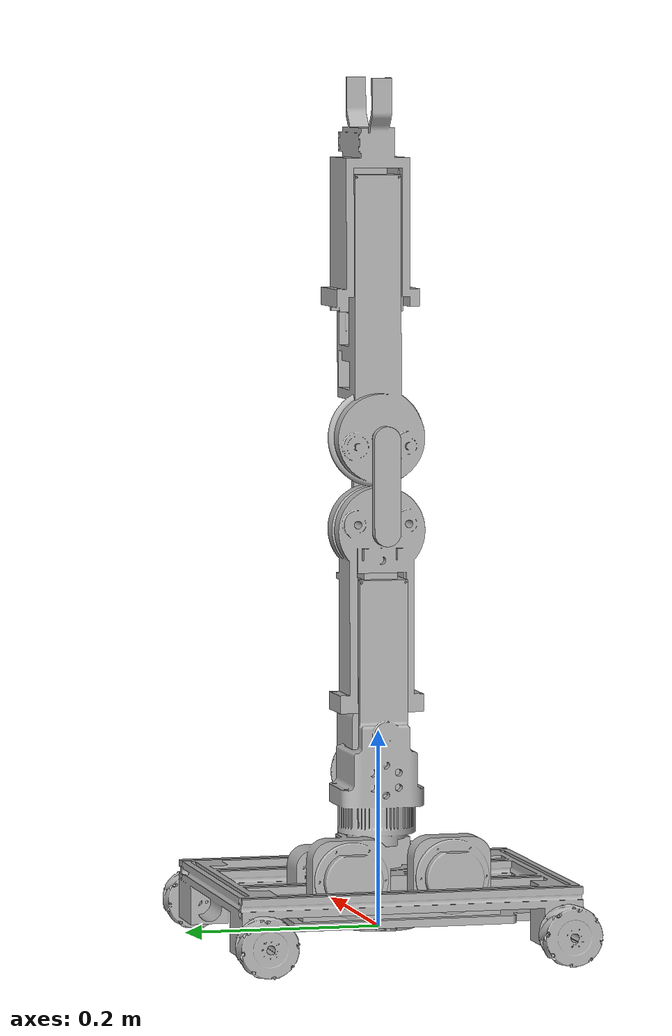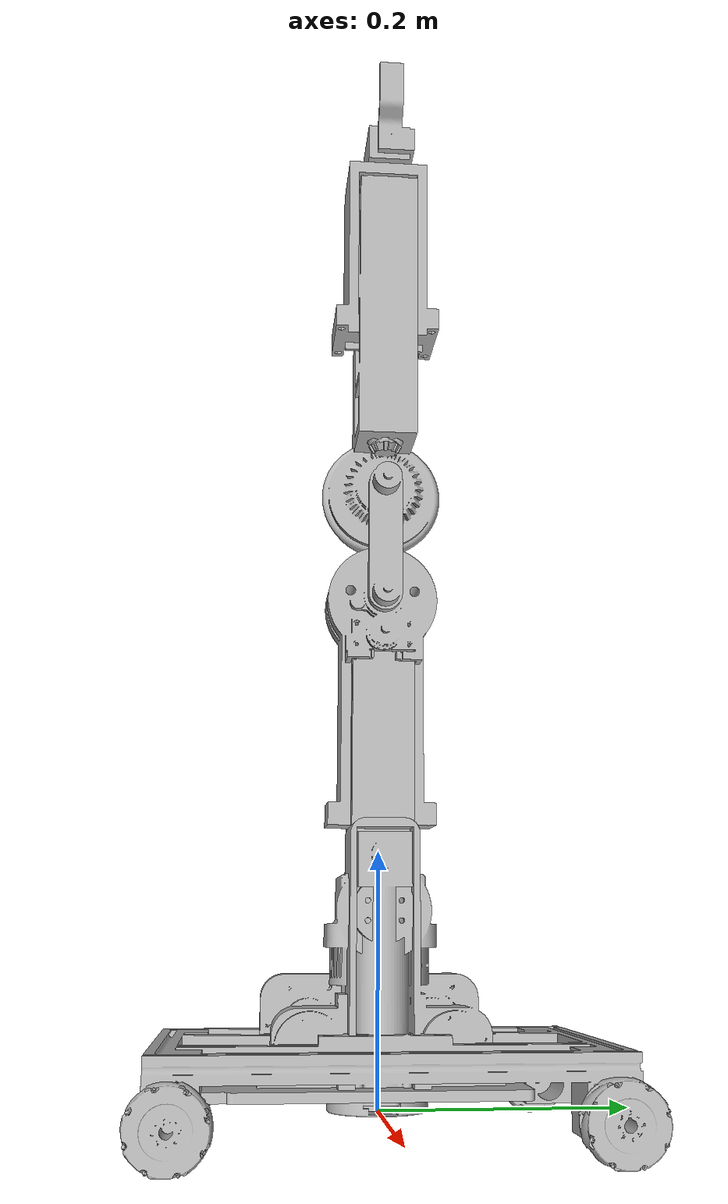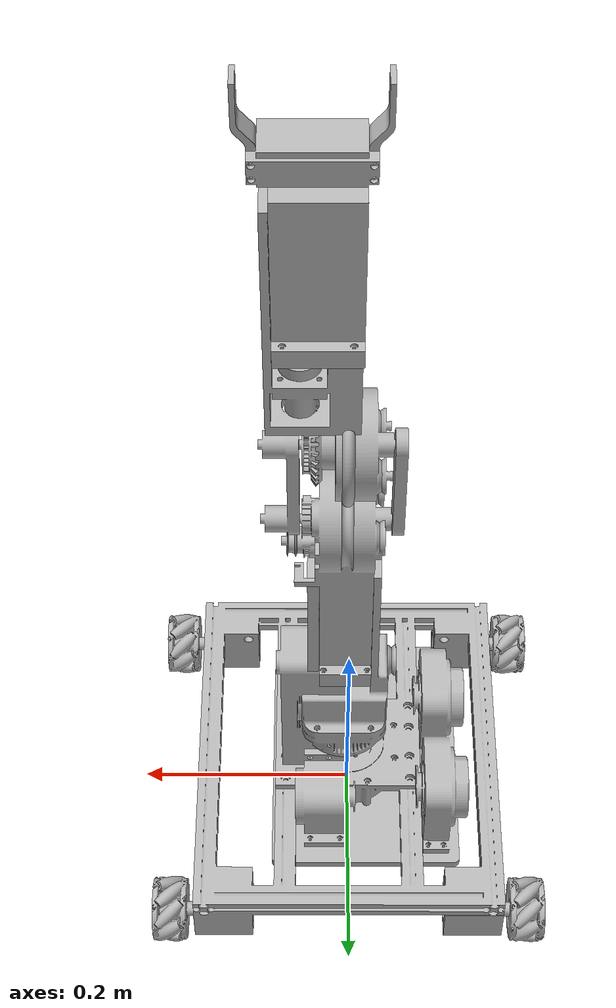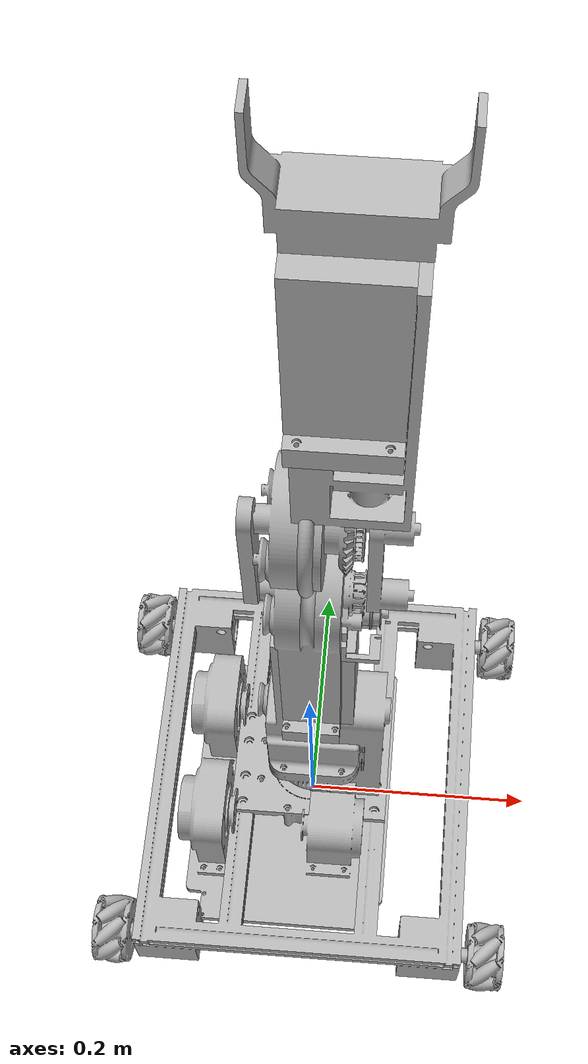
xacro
<?xml version="1.0" ?>
<robot name="manipulator_motor" xmlns:xacro="http://www.ros.org/wiki/xacro">

<xacro:include filename="$(find manipulator_motor_description)/urdf/materials.xacro" />
<xacro:include filename="$(find manipulator_motor_description)/urdf/manipulator_motor.trans" />
<xacro:include filename="$(find manipulator_motor_description)/urdf/manipulator_motor.gazebo" />
<link name="base_link">
  <inertial>
    <origin xyz="7.545697705159546e-06 -6.288383922219511e-06 0.03594594111046938" rpy="0 0 0"/>
    <mass value="0.8918760892092862"/>
    <inertia ixx="0.013044" iyy="0.008436" izz="0.020962" ixy="0.0" iyz="-1e-06" ixz="0.0"/>
  </inertial>
  <visual>
    <origin xyz="0 0 0" rpy="0 0 0"/>
    <geometry>
      <mesh filename="package://manipulator_motor_description/meshes/base_link.stl" scale="0.001 0.001 0.001"/>
    </geometry>
    <material name="silver"/>
  </visual>
  <collision>
    <origin xyz="0 0 0" rpy="0 0 0"/>
    <geometry>
      <mesh filename="package://manipulator_motor_description/meshes/base_link.stl" scale="0.001 0.001 0.001"/>
    </geometry>
  </collision>
</link>

<link name="yaw_link_1">
  <inertial>
    <origin xyz="0.02505185068167164 0.00017308161549442616 0.04350757657338304" rpy="0 0 0"/>
    <mass value="0.9994851144783486"/>
    <inertia ixx="0.005871" iyy="0.004947" izz="0.008392" ixy="-9e-06" iyz="-5e-06" ixz="-0.000648"/>
  </inertial>
  <visual>
    <origin xyz="-0.0 -0.0 -0.0566" rpy="0 0 0"/>
    <geometry>
      <mesh filename="package://manipulator_motor_description/meshes/yaw_link_1.stl" scale="0.001 0.001 0.001"/>
    </geometry>
    <material name="silver"/>
  </visual>
  <collision>
    <origin xyz="-0.0 -0.0 -0.0566" rpy="0 0 0"/>
    <geometry>
      <mesh filename="package://manipulator_motor_description/meshes/yaw_link_1.stl" scale="0.001 0.001 0.001"/>
    </geometry>
  </collision>
</link>

<link name="lower_link1_1">
  <inertial>
    <origin xyz="-0.045625724622633944 3.860031882735413e-05 0.05414663144303672" rpy="0 0 0"/>
    <mass value="0.42602249031214784"/>
    <inertia ixx="0.002224" iyy="0.002372" izz="0.000454" ixy="-0.0" iyz="-1e-06" ixz="-7e-06"/>
  </inertial>
  <visual>
    <origin xyz="-0.054 -0.0005 -0.1531" rpy="0 0 0"/>
    <geometry>
      <mesh filename="package://manipulator_motor_description/meshes/lower_link1_1.stl" scale="0.001 0.001 0.001"/>
    </geometry>
    <material name="silver"/>
  </visual>
  <collision>
    <origin xyz="-0.054 -0.0005 -0.1531" rpy="0 0 0"/>
    <geometry>
      <mesh filename="package://manipulator_motor_description/meshes/lower_link1_1.stl" scale="0.001 0.001 0.001"/>
    </geometry>
  </collision>
</link>

<link name="lower_link2_1">
  <inertial>
    <origin xyz="-0.00012108099532818183 4.2996702874214024e-05 0.16604608820037914" rpy="0 0 0"/>
    <mass value="0.48373366369507653"/>
    <inertia ixx="0.002598" iyy="0.002446" izz="0.000395" ixy="1e-06" iyz="-1e-06" ixz="-3e-06"/>
  </inertial>
  <visual>
    <origin xyz="-0.0058 -0.000557 -0.1931" rpy="0 0 0"/>
    <geometry>
      <mesh filename="package://manipulator_motor_description/meshes/lower_link2_1.stl" scale="0.001 0.001 0.001"/>
    </geometry>
    <material name="silver"/>
  </visual>
  <collision>
    <origin xyz="-0.0058 -0.000557 -0.1931" rpy="0 0 0"/>
    <geometry>
      <mesh filename="package://manipulator_motor_description/meshes/lower_link2_1.stl" scale="0.001 0.001 0.001"/>
    </geometry>
  </collision>
</link>

<link name="guide2_1">
  <inertial>
    <origin xyz="0.004660145389821631 -8.351629404252335e-05 0.051805846663189714" rpy="0 0 0"/>
    <mass value="0.04577799695273184"/>
    <inertia ixx="6.9e-05" iyy="7e-05" izz="5e-06" ixy="-0.0" iyz="-0.0" ixz="0.0"/>
  </inertial>
  <visual>
    <origin xyz="-0.0493 -0.000854 -0.399044" rpy="0 0 0"/>
    <geometry>
      <mesh filename="package://manipulator_motor_description/meshes/guide2_1.stl" scale="0.001 0.001 0.001"/>
    </geometry>
    <material name="silver"/>
  </visual>
  <collision>
    <origin xyz="-0.0493 -0.000854 -0.399044" rpy="0 0 0"/>
    <geometry>
      <mesh filename="package://manipulator_motor_description/meshes/guide2_1.stl" scale="0.001 0.001 0.001"/>
    </geometry>
  </collision>
</link>

<link name="upper_link1_1">
  <inertial>
    <origin xyz="-0.030636725348820667 -0.00013414945634581928 0.09528109292485926" rpy="0 0 0"/>
    <mass value="0.7296264074388947"/>
    <inertia ixx="0.00632" iyy="0.006514" izz="0.000624" ixy="-1e-06" iyz="-1.4e-05" ixz="-0.000515"/>
  </inertial>
  <visual>
    <origin xyz="-0.04675 -0.001214 -0.492543" rpy="0 0 0"/>
    <geometry>
      <mesh filename="package://manipulator_motor_description/meshes/upper_link1_1.stl" scale="0.001 0.001 0.001"/>
    </geometry>
    <material name="silver"/>
  </visual>
  <collision>
    <origin xyz="-0.04675 -0.001214 -0.492543" rpy="0 0 0"/>
    <geometry>
      <mesh filename="package://manipulator_motor_description/meshes/upper_link1_1.stl" scale="0.001 0.001 0.001"/>
    </geometry>
  </collision>
</link>

<link name="guide1_1">
  <inertial>
    <origin xyz="-0.005041755897903143 0.00010117652591923917 0.04674982669055905" rpy="0 0 0"/>
    <mass value="0.030529146035298826"/>
    <inertia ixx="3.5e-05" iyy="3.3e-05" izz="2e-06" ixy="-0.0" iyz="-0.0" ixz="-0.0"/>
  </inertial>
  <visual>
    <origin xyz="0.03315 -0.000679 -0.4041" rpy="0 0 0"/>
    <geometry>
      <mesh filename="package://manipulator_motor_description/meshes/guide1_1.stl" scale="0.001 0.001 0.001"/>
    </geometry>
    <material name="silver"/>
  </visual>
  <collision>
    <origin xyz="0.03315 -0.000679 -0.4041" rpy="0 0 0"/>
    <geometry>
      <mesh filename="package://manipulator_motor_description/meshes/guide1_1.stl" scale="0.001 0.001 0.001"/>
    </geometry>
  </collision>
</link>

<link name="upper_link2_1">
  <inertial>
    <origin xyz="-0.012947590284332407 5.5232631865337074e-05 0.13361930444452141" rpy="0 0 0"/>
    <mass value="0.35479896787269694"/>
    <inertia ixx="0.001653" iyy="0.001635" izz="0.000368" ixy="-0.0" iyz="-1.1e-05" ixz="2.8e-05"/>
  </inertial>
  <visual>
    <origin xyz="-0.0442 -0.001705 -0.594659" rpy="0 0 0"/>
    <geometry>
      <mesh filename="package://manipulator_motor_description/meshes/upper_link2_1.stl" scale="0.001 0.001 0.001"/>
    </geometry>
    <material name="silver"/>
  </visual>
  <collision>
    <origin xyz="-0.0442 -0.001705 -0.594659" rpy="0 0 0"/>
    <geometry>
      <mesh filename="package://manipulator_motor_description/meshes/upper_link2_1.stl" scale="0.001 0.001 0.001"/>
    </geometry>
  </collision>
</link>

<link name="wheel_fl_1">
  <inertial>
    <origin xyz="0.022733132020722774 5.291380714977922e-07 -7.023490456061279e-06" rpy="0 0 0"/>
    <mass value="0.05353335397371693"/>
    <inertia ixx="2.5e-05" iyy="1.8e-05" izz="1.8e-05" ixy="-0.0" iyz="-0.0" ixz="0.0"/>
  </inertial>
  <visual>
    <origin xyz="-0.1452 0.1552 -0.0091" rpy="0 0 0"/>
    <geometry>
      <mesh filename="package://manipulator_motor_description/meshes/wheel_fl_1.stl" scale="0.001 0.001 0.001"/>
    </geometry>
    <material name="silver"/>
  </visual>
  <collision>
    <origin xyz="-0.1452 0.1552 -0.0091" rpy="0 0 0"/>
    <geometry>
      <mesh filename="package://manipulator_motor_description/meshes/wheel_fl_1.stl" scale="0.001 0.001 0.001"/>
    </geometry>
  </collision>
</link>

<link name="wheel_bl_1">
  <inertial>
    <origin xyz="0.02273313202167407 5.110640206307249e-07 -7.024835080346459e-06" rpy="0 0 0"/>
    <mass value="0.05353335397547339"/>
    <inertia ixx="2.5e-05" iyy="1.8e-05" izz="1.8e-05" ixy="-0.0" iyz="-0.0" ixz="0.0"/>
  </inertial>
  <visual>
    <origin xyz="-0.1452 -0.1552 -0.0091" rpy="0 0 0"/>
    <geometry>
      <mesh filename="package://manipulator_motor_description/meshes/wheel_bl_1.stl" scale="0.001 0.001 0.001"/>
    </geometry>
    <material name="silver"/>
  </visual>
  <collision>
    <origin xyz="-0.1452 -0.1552 -0.0091" rpy="0 0 0"/>
    <geometry>
      <mesh filename="package://manipulator_motor_description/meshes/wheel_bl_1.stl" scale="0.001 0.001 0.001"/>
    </geometry>
  </collision>
</link>

<link name="wheel_fr_1">
  <inertial>
    <origin xyz="-0.022733132410434842 2.849096295387543e-06 6.441422285792531e-06" rpy="0 0 0"/>
    <mass value="0.05353335889121502"/>
    <inertia ixx="2.5e-05" iyy="1.8e-05" izz="1.8e-05" ixy="0.0" iyz="0.0" ixz="0.0"/>
  </inertial>
  <visual>
    <origin xyz="0.1452 0.1552 -0.0091" rpy="0 0 0"/>
    <geometry>
      <mesh filename="package://manipulator_motor_description/meshes/wheel_fr_1.stl" scale="0.001 0.001 0.001"/>
    </geometry>
    <material name="silver"/>
  </visual>
  <collision>
    <origin xyz="0.1452 0.1552 -0.0091" rpy="0 0 0"/>
    <geometry>
      <mesh filename="package://manipulator_motor_description/meshes/wheel_fr_1.stl" scale="0.001 0.001 0.001"/>
    </geometry>
  </collision>
</link>

<link name="wheel_br_1">
  <inertial>
    <origin xyz="-0.022733131995852668 4.4508618859961935e-06 5.458912178934669e-06" rpy="0 0 0"/>
    <mass value="0.05353335383710403"/>
    <inertia ixx="2.5e-05" iyy="1.8e-05" izz="1.8e-05" ixy="0.0" iyz="0.0" ixz="0.0"/>
  </inertial>
  <visual>
    <origin xyz="0.1452 -0.1552 -0.0091" rpy="0 0 0"/>
    <geometry>
      <mesh filename="package://manipulator_motor_description/meshes/wheel_br_1.stl" scale="0.001 0.001 0.001"/>
    </geometry>
    <material name="silver"/>
  </visual>
  <collision>
    <origin xyz="0.1452 -0.1552 -0.0091" rpy="0 0 0"/>
    <geometry>
      <mesh filename="package://manipulator_motor_description/meshes/wheel_br_1.stl" scale="0.001 0.001 0.001"/>
    </geometry>
  </collision>
</link>

<joint name="È¸Àü 1" type="revolute">
  <origin xyz="0.0 0.0 0.0566" rpy="0 0 0"/>
  <parent link="base_link"/>
  <child link="yaw_link_1"/>
  <axis xyz="-0.0 -0.0 -1.0"/>
  <limit upper="2.094395" lower="-2.094395" effort="100" velocity="100"/>
</joint>

<joint name="È¸Àü 2" type="revolute">
  <origin xyz="0.054 0.0005 0.0965" rpy="0 0 0"/>
  <parent link="yaw_link_1"/>
  <child link="lower_link1_1"/>
  <axis xyz="1.0 -0.0 0.0"/>
  <limit upper="1.570796" lower="0.0" effort="100" velocity="100"/>
</joint>

<joint name="½½¶óÀÌ´õ 3" type="prismatic">
  <origin xyz="-0.0482 5.7e-05 0.04" rpy="0 0 0"/>
  <parent link="lower_link1_1"/>
  <child link="lower_link2_1"/>
  <axis xyz="0.0 0.000713 1.0"/>
  <limit upper="0.09" lower="0.0" effort="100" velocity="100"/>
</joint>

<joint name="È¸Àü 4" type="revolute">
  <origin xyz="0.0435 0.000297 0.205944" rpy="0 0 0"/>
  <parent link="lower_link2_1"/>
  <child link="guide2_1"/>
  <axis xyz="1.0 -0.0 0.0"/>
  <limit upper="1.570796" lower="0.0" effort="100" velocity="100"/>
</joint>

<joint name="È¸Àü 5" type="revolute">
  <origin xyz="-0.00255 0.00036 0.093499" rpy="0 0 0"/>
  <parent link="guide2_1"/>
  <child link="upper_link1_1"/>
  <axis xyz="1.0 0.0 -0.0"/>
  <limit upper="1.570796" lower="0.0" effort="100" velocity="100"/>
</joint>

<joint name="È¸Àü 6" type="continuous">
  <origin xyz="-0.03895 0.000122 0.211" rpy="0 0 0"/>
  <parent link="lower_link2_1"/>
  <child link="guide1_1"/>
  <axis xyz="-1.0 0.0 -0.0"/>
</joint>

<joint name="½½¶óÀÌ´õ 7" type="prismatic">
  <origin xyz="-0.00255 0.000491 0.102116" rpy="0 0 0"/>
  <parent link="upper_link1_1"/>
  <child link="upper_link2_1"/>
  <axis xyz="0.0 0.002413 0.999997"/>
  <limit upper="0.09" lower="0.0" effort="100" velocity="100"/>
</joint>

<joint name="È¸Àü 8" type="continuous">
  <origin xyz="0.1452 -0.1552 0.0091" rpy="0 0 0"/>
  <parent link="base_link"/>
  <child link="wheel_fl_1"/>
  <axis xyz="-1.0 0.0 -0.0"/>
</joint>

<joint name="È¸Àü 9" type="continuous">
  <origin xyz="0.1452 0.1552 0.0091" rpy="0 0 0"/>
  <parent link="base_link"/>
  <child link="wheel_bl_1"/>
  <axis xyz="-1.0 0.0 -0.0"/>
</joint>

<joint name="È¸Àü 10" type="continuous">
  <origin xyz="-0.1452 -0.1552 0.0091" rpy="0 0 0"/>
  <parent link="base_link"/>
  <child link="wheel_fr_1"/>
  <axis xyz="1.0 -0.0 0.0"/>
</joint>

<joint name="È¸Àü 11" type="continuous">
  <origin xyz="-0.1452 0.1552 0.0091" rpy="0 0 0"/>
  <parent link="base_link"/>
  <child link="wheel_br_1"/>
  <axis xyz="1.0 -0.0 0.0"/>
</joint>

</robot>

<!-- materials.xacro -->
<robot name="manipulator_motor" xmlns:xacro="http://www.ros.org/wiki/xacro" >

<material name="silver">
  <color rgba="0.700 0.700 0.700 1.000"/>
</material>

</robot>

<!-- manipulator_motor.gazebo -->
<robot name="manipulator_motor" xmlns:xacro="http://www.ros.org/wiki/xacro" >

<xacro:property name="body_color" value="Gazebo/Silver" />

<gazebo>
  <plugin name="control" filename="libgazebo_ros_control.so"/>
</gazebo>
<gazebo reference="base_link">
  <material>${body_color}</material>
  <mu1>0.2</mu1>
  <mu2>0.2</mu2>
  <selfCollide>true</selfCollide>
  <gravity>true</gravity>
</gazebo>

<gazebo reference="yaw_link_1">
  <material>${body_color}</material>
  <mu1>0.2</mu1>
  <mu2>0.2</mu2>
  <selfCollide>true</selfCollide>
</gazebo>

<gazebo reference="lower_link1_1">
  <material>${body_color}</material>
  <mu1>0.2</mu1>
  <mu2>0.2</mu2>
  <selfCollide>true</selfCollide>
</gazebo>

<gazebo reference="lower_link2_1">
  <material>${body_color}</material>
  <mu1>0.2</mu1>
  <mu2>0.2</mu2>
  <selfCollide>true</selfCollide>
</gazebo>

<gazebo reference="guide2_1">
  <material>${body_color}</material>
  <mu1>0.2</mu1>
  <mu2>0.2</mu2>
  <selfCollide>true</selfCollide>
</gazebo>

<gazebo reference="upper_link1_1">
  <material>${body_color}</material>
  <mu1>0.2</mu1>
  <mu2>0.2</mu2>
  <selfCollide>true</selfCollide>
</gazebo>

<gazebo reference="guide1_1">
  <material>${body_color}</material>
  <mu1>0.2</mu1>
  <mu2>0.2</mu2>
  <selfCollide>true</selfCollide>
</gazebo>

<gazebo reference="upper_link2_1">
  <material>${body_color}</material>
  <mu1>0.2</mu1>
  <mu2>0.2</mu2>
  <selfCollide>true</selfCollide>
</gazebo>

<gazebo reference="wheel_fl_1">
  <material>${body_color}</material>
  <mu1>0.2</mu1>
  <mu2>0.2</mu2>
  <selfCollide>true</selfCollide>
</gazebo>

<gazebo reference="wheel_bl_1">
  <material>${body_color}</material>
  <mu1>0.2</mu1>
  <mu2>0.2</mu2>
  <selfCollide>true</selfCollide>
</gazebo>

<gazebo reference="wheel_fr_1">
  <material>${body_color}</material>
  <mu1>0.2</mu1>
  <mu2>0.2</mu2>
  <selfCollide>true</selfCollide>
</gazebo>

<gazebo reference="wheel_br_1">
  <material>${body_color}</material>
  <mu1>0.2</mu1>
  <mu2>0.2</mu2>
  <selfCollide>true</selfCollide>
</gazebo>

</robot>
